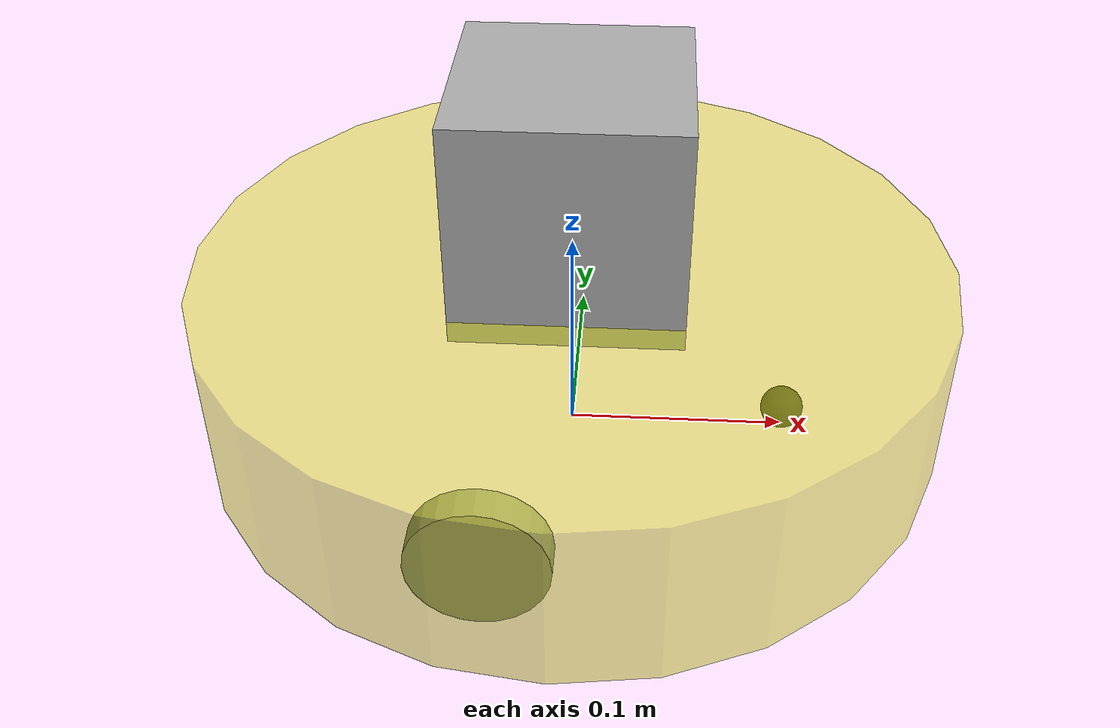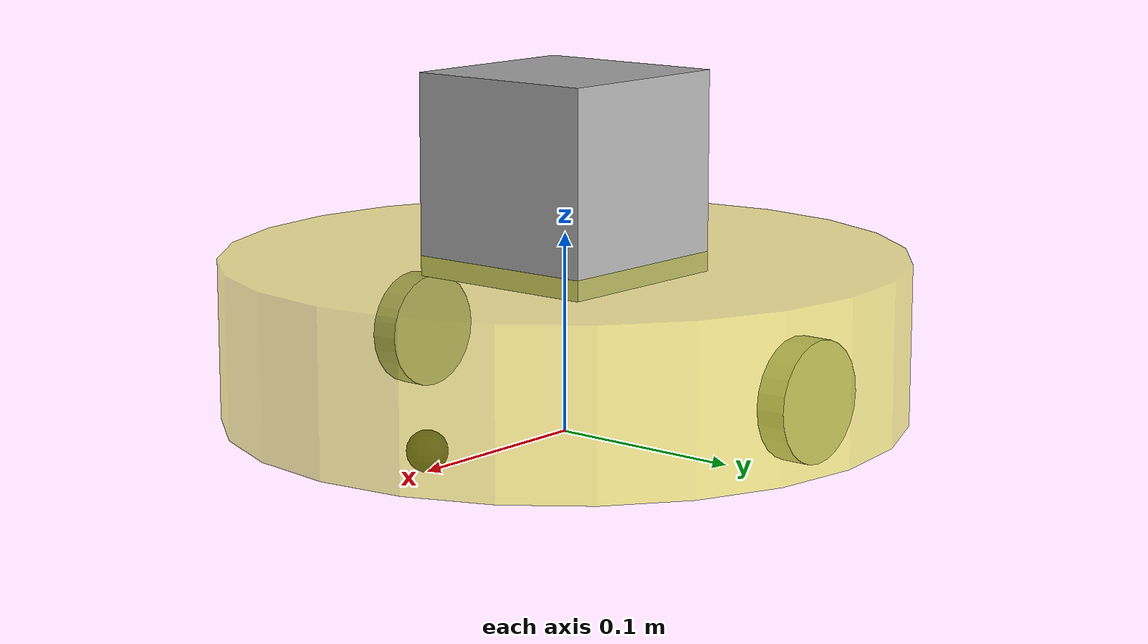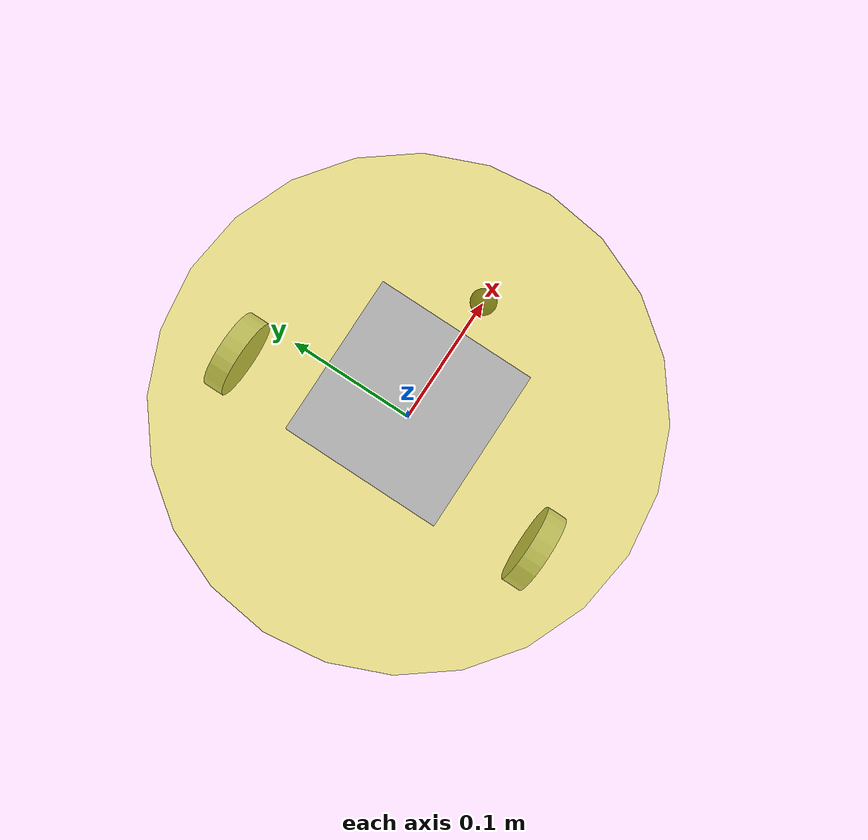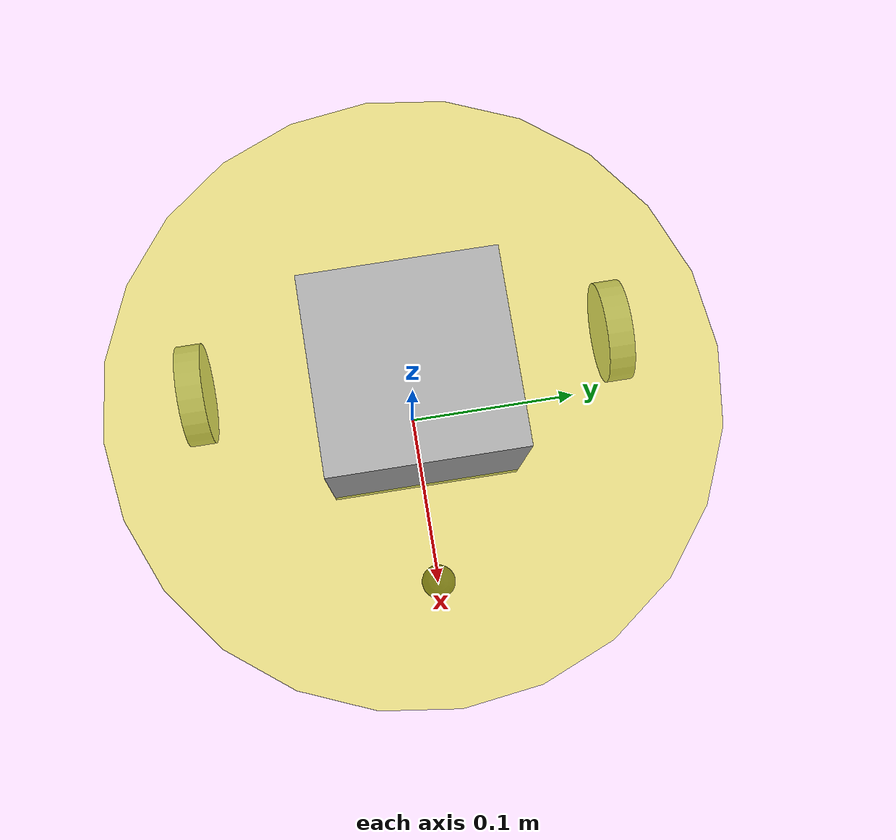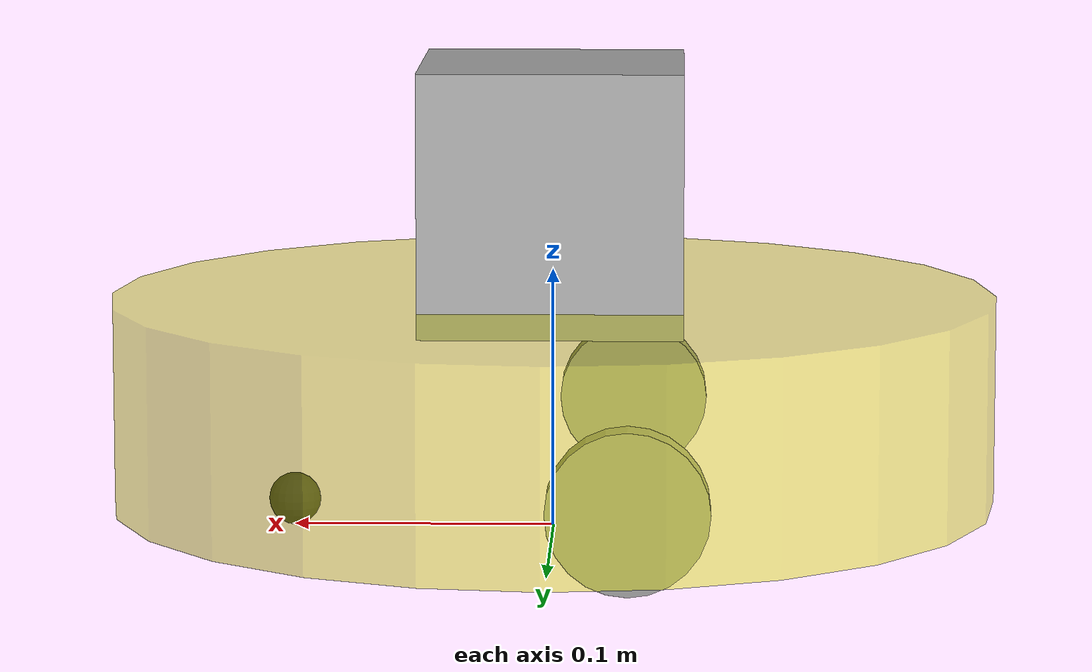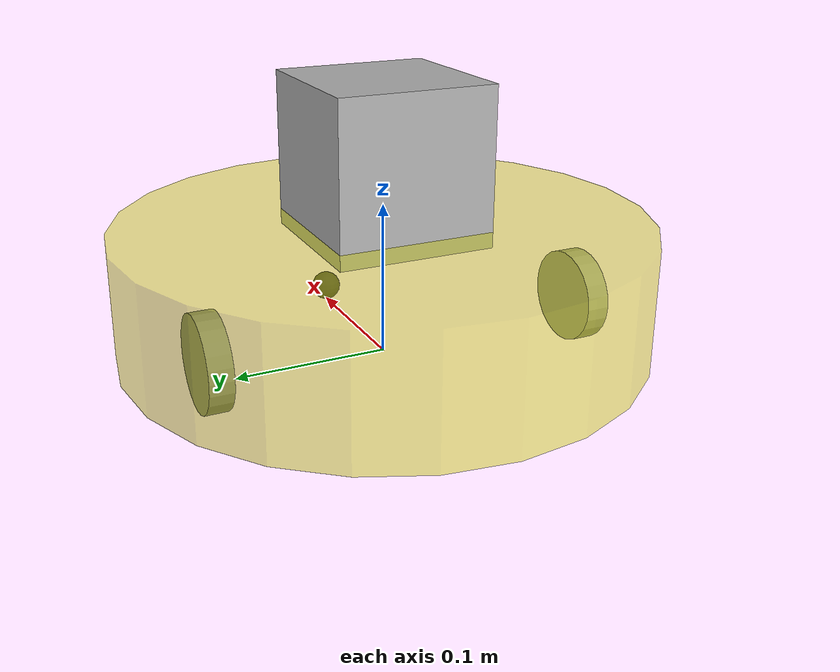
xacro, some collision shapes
<?xml version="1.0"?>
<robot name="car_chassis_2diff" xmlns:xacro="http://ros.org/wiki/xacro">
    <xacro:include filename="$(find urdf_learning)/urdf/car_chassis_2diff_xacro.xacro" />
    <xacro:include filename="$(find urdf_learning)/urdf/sensor/rplidar_gazebo.xacro"/>

    <xacro:car_chassis_2diff />
    <xacro:rplidar_A1M8 />

    <joint name="rplidar_joint" type="fixed">
        <origin xyz="0 0 0.08" rpy="0 0 0"/>
        <parent link="base_link"/>
        <child link="laser_link"/>
    </joint>

</robot>

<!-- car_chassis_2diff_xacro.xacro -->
<robot name="car_chassis_2diff" xmlns:xacro="http://ros.org/wiki/xacro">
    <xacro:property name="PI" value="3.14159265359"/>
    <xacro:property name="wheel_mass" value="0.05"/>
    <xacro:property name="motor_mass" value="0.1"/>
    <xacro:property name="caster_mass" value="0.05"/>
    <xacro:property name="wheel_radius" value="0.03"/>
    <xacro:property name="wheel_length" value="0.015"/>
    <xacro:property name="motor_radius" value="0.01"/>
    <xacro:property name="motor_length" value="0.05"/>
    <xacro:property name="caster_radius" value="0.01"/>

    <xacro:property name="wheel_joint_x" value="0.0"/>
    <xacro:property name="wheel_joint_y" value="0.025"/>
    <xacro:property name="wheel_joint_z" value="0.0"/>
    <xacro:property name="motor_joint_x" value="-0.03"/>
    <xacro:property name="motor_joint_y" value="0.1"/>
    <xacro:property name="motor_joint_z" value="-0.02"/>

    <material name="blue">
        <color rgba="0.5 0.5 1 0.8"/>
    </material>
    <material name="white">
        <color rgba="0.6 0.6 0.6 1"/>
    </material>

    <!-- inertial calculater start -->
    <xacro:macro name="sphere_inertial" params="m r">
        <inertial>
            <mass value="${m}" />
            <inertia
            ixx="${2*m*r*r/5}" ixy="0" ixz="0"
            iyy="${2*m*r*r/5}" iyz="0" izz="${2*m*r*r/5}" />
        </inertial>
    </xacro:macro>
    <xacro:macro name="cylinder_inertial" params="m r h">
        <inertial>
            <mass value="${m}" />
            <inertia
            ixx="${m*(3*r*r+h*h)/12}" ixy="0" ixz="0"
            iyy="${m*(3*r*r+h*h)/12}" iyz="0" izz="${m*r*r/2}" />
        </inertial>
    </xacro:macro>
    <xacro:macro name="box_inertial" params="m x y z">
        <inertial>
            <mass value="${m}" />
            <inertia
            ixx="${m*(y*y+z*z)/12}" ixy="0" ixz="0"
            iyy="${m*(x*x+z*z)/12}" iyz="0" izz="${m*(x*x+y*y)/12}" />
        </inertial>
    </xacro:macro>
    <!-- inertial calculater end -->

    <!-- entity macro start -->
    <xacro:macro name="motor" params="loc_prefix l_r">
        <joint name="base_${loc_prefix}_motor_joint" type="fixed">
            <origin xyz="${motor_joint_x} ${l_r*motor_joint_y} ${motor_joint_z}" rpy="0 0 0" />
            <parent link="base_link" />
            <child link="${loc_prefix}_motor" />
        </joint>

        <link name="${loc_prefix}_motor">
            <visual>
                <origin xyz="0 0 0" rpy="${l_r*PI/2} 0 0" />
                <geometry>
                    <cylinder radius="${motor_radius}" length ="${motor_length}"/>
                </geometry>
                <material name="blue" />
            </visual>
            <collision>
                <origin xyz="0 0 0" rpy="${l_r*PI/2} 0 0" />
                <geometry>
                    <cylinder radius="${motor_radius}" length ="${motor_length}"/>
                </geometry>
            </collision>
            <xacro:cylinder_inertial m="${motor_mass}" r="${motor_radius}" h="${motor_length}" />
        </link>
        <gazebo reference="${loc_prefix}_motor">
            <material>Gazebo/Red</material>
        </gazebo>
    </xacro:macro>

    <xacro:macro name="wheel" params="loc_prefix l_r">
        <joint name="${loc_prefix}_wheel_joint" type="continuous">
            <origin xyz="${wheel_joint_x} ${l_r*wheel_joint_y} ${wheel_joint_z}" rpy="0 0 0" />
            <parent link="${loc_prefix}_motor" />
            <child link="${loc_prefix}_wheel_link" />
            <axis xyz="0 1 0" />
        </joint>

        <link name="${loc_prefix}_wheel_link">
            <visual>
                <origin xyz="0 0 0" rpy="${l_r*PI/2} 0 0" />
                <geometry>
                    <cylinder radius="${wheel_radius}" length ="${wheel_length}"/>
                </geometry>
                <material name="white"/>
            </visual>
            <collision>
                <origin xyz="0 0 0" rpy="${l_r*PI/2} 0 0" />
                <geometry>
                    <cylinder radius="${wheel_radius}" length ="${wheel_length}"/>
                </geometry>
            </collision>
            <xacro:cylinder_inertial m="${wheel_mass}" r="${wheel_radius}" h="${wheel_length}" />
        </link>
        <gazebo reference="${loc_prefix}_wheel_link">
            <material>Gazebo/Orange</material>
        </gazebo>
        <transmission name="${loc_prefix}_wheel_trans">
            <type>transmission_interface/SimpleTransmission</type>
            <actuator name="${loc_prefix}_motor">
                <mechanicalReduction>1</mechanicalReduction>
            </actuator>
            <joint name="${loc_prefix}_wheel_joint">
                <hardwareInterface>VelocityJointInterface</hardwareInterface>
            </joint>
        </transmission>
        <xacro:motor loc_prefix="${loc_prefix}" l_r="${l_r}" />
    </xacro:macro>

    <xacro:macro name="caster">
        <joint name="base_caster_joint" type="fixed">
            <origin xyz="0.1 0 -0.04" rpy="0 0 0" />
            <parent link="base_link" />
            <child link="caster_link" />
        </joint>
        <link name="caster_link">
            <visual>
                <origin xyz="0 0 0" rpy="0 0 0" />
                <geometry>
                    <sphere radius="0.01" />
                </geometry>
                <material name="blue">
                    <color rgba="0.1 0.1 0.1 1" />
                </material>
            </visual>
            <collision>
                <origin xyz="0 0 0" rpy="0 0 0" />
                <geometry>
                    <sphere radius="0.01" />
                </geometry>
            </collision>
            <xacro:sphere_inertial m="${caster_mass}" r="${caster_radius}" />
        </link>
    </xacro:macro>
    <xacro:macro name="base">
        <link name="base_link">
            <visual>
                <origin xyz="0 0 0" rpy="0 0 0" />
                <geometry>
                    <cylinder length="0.08" radius="0.17" />
                </geometry>
                <material name="yellow">
                    <color rgba="0.9 0.9 0.1 0.5" />
                </material>
            </visual>
        </link>
    </xacro:macro>
    <!-- entity macro end -->

    <xacro:macro name="car_chassis_2diff">
        <!-- base start -->
        <link name="base_footprint">
            <visual>
                <origin xyz="0.0 0.0 0.0" rpy="0.0 0.0 0.0"/>
                <geometry>
                    <box size="0.001 0.001 0.001"/>
                </geometry>
            </visual>
        </link>
        <gazebo reference="base_footprint">
            <turnGravityOff>false</turnGravityOff>
        </gazebo>

        <joint name="base_footprint_joint" type="fixed">
            <origin xyz="0 0 ${wheel_radius-wheel_joint_z-motor_joint_z}" rpy="0 0 0"  />
            <parent link="base_footprint" />
            <child link="base_link" />
        </joint>
        <!-- base end -->

        <xacro:base />
        <xacro:wheel loc_prefix="lf" l_r="1" />
        <xacro:wheel loc_prefix="rt" l_r="-1" />
        <xacro:caster />

        <gazebo>
            <plugin name="differential_drive_controller" filename="libgazebo_ros_diff_drive.so">
                <updateRate>100</updateRate>
                <leftJoint>lf_wheel_joint</leftJoint>
                <rightJoint>rt_wheel_joint</rightJoint>
                <wheelSeparation>${2*(motor_joint_y+wheel_joint_y)}</wheelSeparation>
                <wheelDiameter>${2*wheel_radius}</wheelDiameter>
                <wheelAcceleration>1.0</wheelAcceleration>
                <wheelTorque>5</wheelTorque>
                <commandTopic>cmd_vel</commandTopic>
                <odometryFrame>odom</odometryFrame>
                <robotBaseFrame>base_footprint</robotBaseFrame>
            </plugin>
        </gazebo>
    </xacro:macro>
</robot>

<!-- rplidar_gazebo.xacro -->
<robot name="car_chassis_2diff" xmlns:xacro="http://ros.org/wiki/xacro">
    <xacro:property name="A1M8_size" value="0.1" />
    <xacro:property name="A1M8_mass" value="0.2" />

    <!-- inertial calculater start -->
    <xacro:macro name="box_inertial" params="m x y z">
        <inertial>
            <mass value="${m}" />
            <inertia
            ixx="${m*(y*y+z*z)/12}" ixy="0" ixz="0"
            iyy="${m*(x*x+z*z)/12}" iyz="0" izz="${m*(x*x+y*y)/12}" />
        </inertial>
    </xacro:macro>
    <!-- inertial calculater end -->

    <xacro:macro name="rplidar_A1M8">
        <link name="laser_link">
            <visual>
                <origin xyz="0.0 0.0 0.0" rpy="0.0 0.0 0.0"/>
                <geometry>
                    <mesh filename="package://urdf_learning/meshes/rplidar.dae"/>
                </geometry>
            </visual>
            <collision>
                <origin xyz="0.0 0.0 0.0" rpy="0.0 0.0 0.0"/>
                <geometry>
                    <box size="${A1M8_size} ${A1M8_size} ${A1M8_size}"/>
                </geometry>
            </collision>

            <xacro:box_inertial m="${A1M8_size}" x="${A1M8_size}" y="${A1M8_size}" z="${A1M8_size}" />
        </link>
        <gazebo reference="laser_link">
            <sensor type="ray" name="A1M8">
                <pose>0 0 0 0 0 0</pose>
                <visualize>false</visualize>
                <update_rate>5.5</update_rate>
                <ray>
                    <scan>
                        <horizontal>
                            <samples>360</samples>
                            <resolution>1</resolution>
                            <min_angle>-3</min_angle>
                            <max_angle>3</max_angle>
                        </horizontal>
                    </scan>
                    <range>
                        <min>0.15</min>
                        <max>12</max>
                        <resolution>0.01</resolution>
                    </range>
                    <noise>
                        <type>gaussian</type>
                        <mean>0.0</mean>
                        <stddev>0.01</stddev>
                    </noise>
                </ray>
                <plugin name="gazebo_rplidar" filename="libgazebo_ros_laser.so">
                    <topicName>/scan</topicName>
                    <frameName>laser_link</frameName>
                </plugin>
            </sensor>
        </gazebo>
    </xacro:macro>

</robot>
